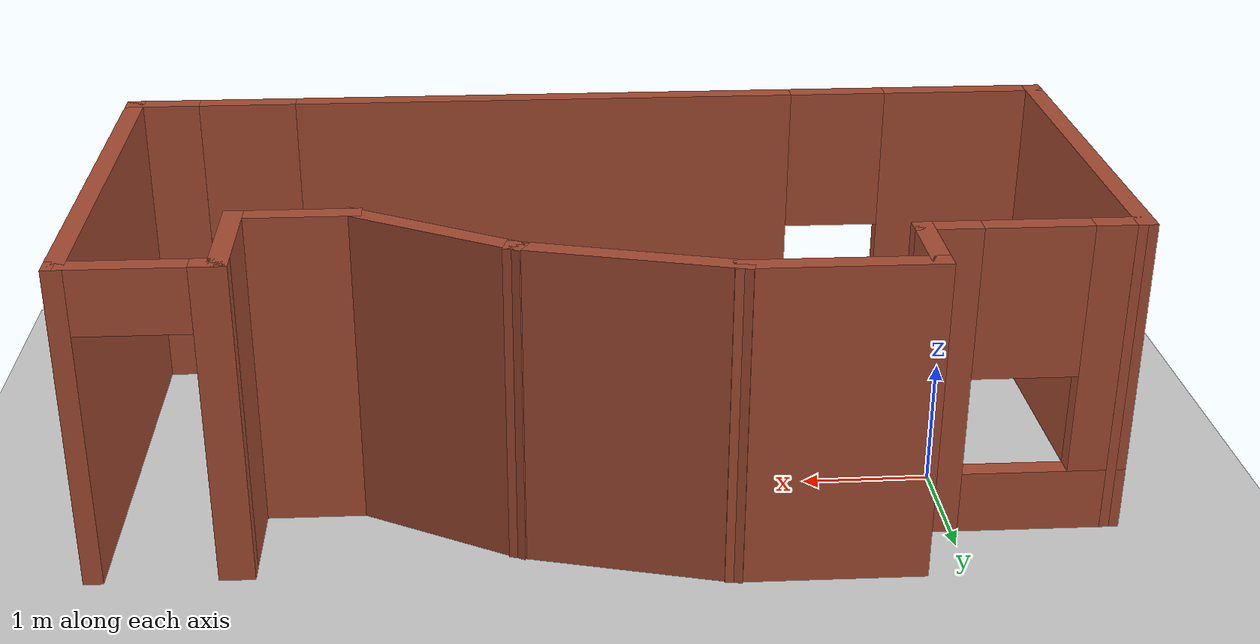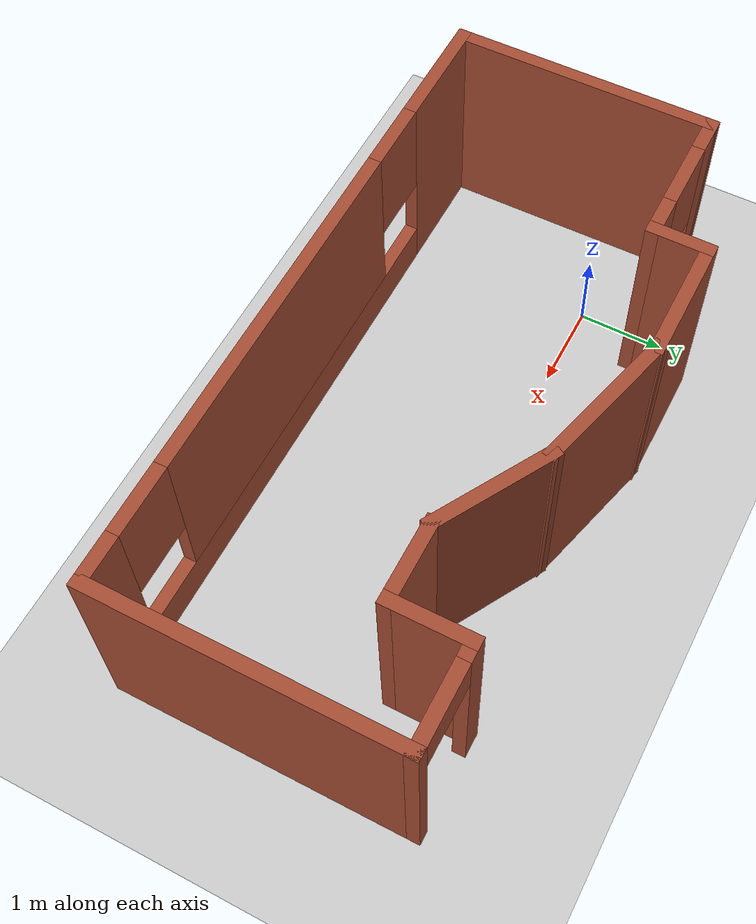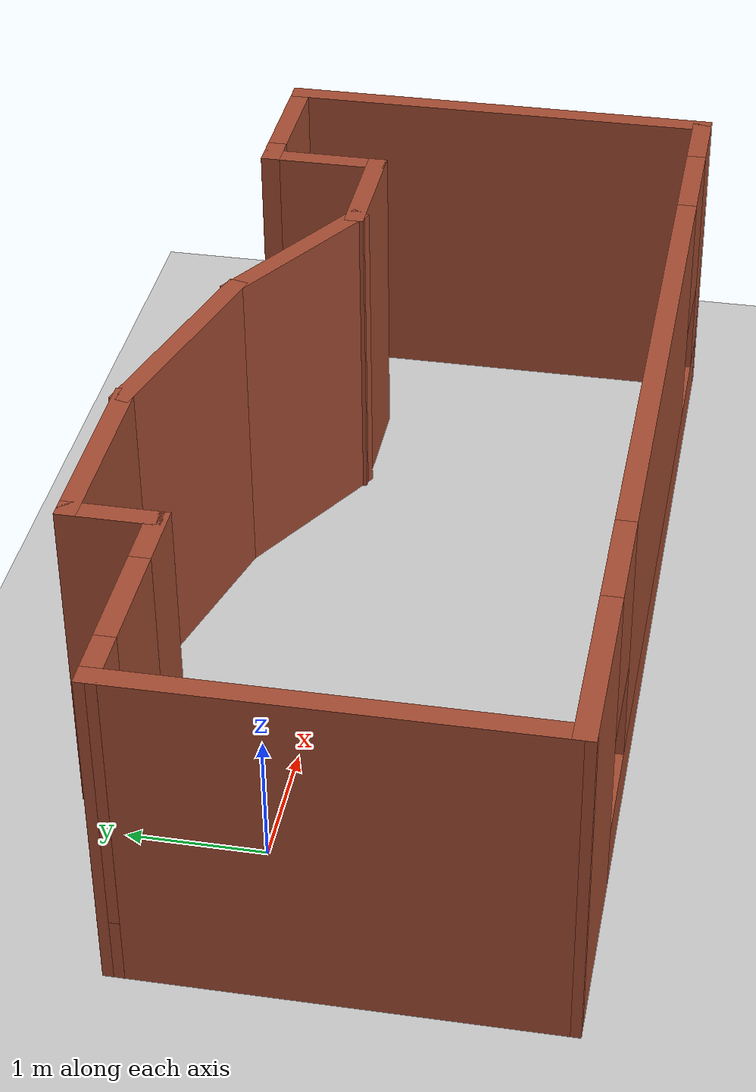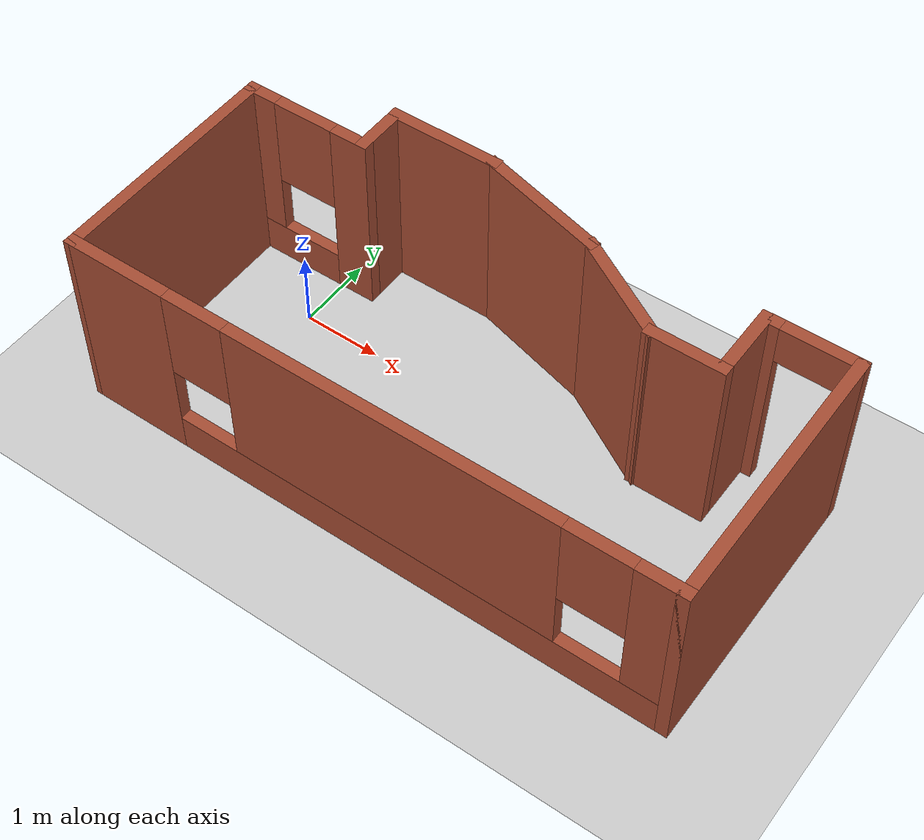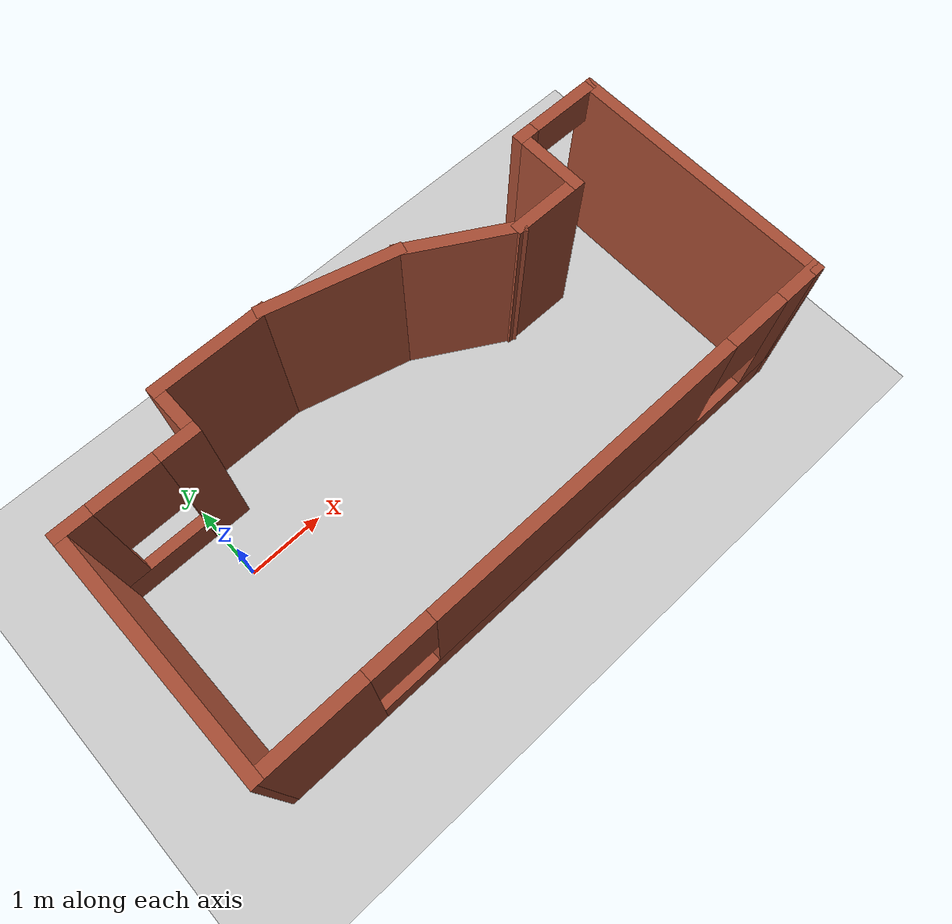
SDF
<sdf version="1.7">
 <world name="default">
  <light name="sun" type="directional">
   <pose>0 0 10 0 -0 0</pose>
   <diffuse>0.8 0.8 0.8 1</diffuse>
   <specular>0.2 0.2 0.2 1</specular>
   <attenuation>
    <range>1000</range>
    <constant>0.9</constant>
    <linear>0.01</linear>
    <quadratic>0.001</quadratic>
   </attenuation>
   <direction>-0.5 0.1 -0.9</direction>
   <spot><inner_angle>0</inner_angle><outer_angle>0</outer_angle><falloff>0</falloff></spot>
  </light>
  <model name="ground_plane">
   <static>1</static>
   <link name="link">
    <collision name="collision">
     <geometry><plane><normal>0 0 1</normal><size>100 100</size></plane></geometry>
     <surface><friction><ode><mu>100</mu><mu2>50</mu2></ode></friction></surface>
    </collision>
    <visual name="visual">
     <cast_shadows>0</cast_shadows>
     <geometry><plane><normal>0 0 1</normal><size>100 100</size></plane></geometry>
     <material>
      <script><uri>file://media/materials/scripts/gazebo.material</uri><name>Gazebo/Grey</name></script>
     </material>
    </visual>
   </link>
  </model>
  <gravity>0 0 -9.8</gravity>
  <magnetic_field>6e-06 2.3e-05 -4.2e-05</magnetic_field>
  <atmosphere type="adiabatic"/>
  <physics type="ode">
   <max_step_size>0.001</max_step_size>
   <real_time_factor>1</real_time_factor>
   <real_time_update_rate>1000</real_time_update_rate>
  </physics>
  <scene><ambient>0.4 0.4 0.4 1</ambient><background>0.7 0.7 0.7 1</background><shadows>1</shadows></scene>
  <audio><device>default</device></audio>
  <spherical_coordinates>
   <surface_model>EARTH_WGS84</surface_model>
   <latitude_deg>0</latitude_deg>
   <longitude_deg>0</longitude_deg>
   <elevation>0</elevation>
   <heading_deg>0</heading_deg>
  </spherical_coordinates>
  <model name="simple">
   <pose>2.58251 -0.4572 0 0 -0 0</pose>
   <link name="Wall_0">
    <pose>0.007491 -1.8028 0 0 -0 0</pose>
    <visual name="Wall_0_Visual_0">
     <pose>-3.1916 0 1.25 0 -0 0</pose>
     <geometry><box><size>1.36679 0.15 2.5</size></box></geometry>
     <material>
      <script><uri>file://media/materials/scripts/gazebo.material</uri><name>Gazebo/Bricks</name></script>
      <ambient>1 1 1 1</ambient>
     </material>
     <meta><layer>0</layer></meta>
    </visual>
    <collision name="Wall_0_Collision_0">
     <geometry><box><size>1.36679 0.15 2.5</size></box></geometry>
     <pose>-3.1916 0 1.25 0 -0 0</pose>
    </collision>
    <visual name="Wall_0_Visual_1">
     <pose>0.683397 0 0.25 0 -0 0</pose>
     <geometry><box><size>6.38321 0.15 0.5</size></box></geometry>
     <material>
      <script><uri>file://media/materials/scripts/gazebo.material</uri><name>Gazebo/Bricks</name></script>
      <ambient>1 1 1 1</ambient>
     </material>
     <meta><layer>0</layer></meta>
    </visual>
    <collision name="Wall_0_Collision_1">
     <geometry><box><size>6.38321 0.15 0.5</size></box></geometry>
     <pose>0.683397 0 0.25 0 -0 0</pose>
    </collision>
    <visual name="Wall_0_Visual_2">
     <pose>0.378913 0 1.5 0 -0 0</pose>
     <geometry><box><size>4.17424 0.15 2</size></box></geometry>
     <material>
      <script><uri>file://media/materials/scripts/gazebo.material</uri><name>Gazebo/Bricks</name></script>
      <ambient>1 1 1 1</ambient>
     </material>
     <meta><layer>0</layer></meta>
    </visual>
    <collision name="Wall_0_Collision_2">
     <geometry><box><size>4.17424 0.15 2</size></box></geometry>
     <pose>0.378913 0 1.5 0 -0 0</pose>
    </collision>
    <visual name="Wall_0_Visual_3">
     <pose>3.57052 0 1.5 0 -0 0</pose>
     <geometry><box><size>0.608968 0.15 2</size></box></geometry>
     <material>
      <script><uri>file://media/materials/scripts/gazebo.material</uri><name>Gazebo/Bricks</name></script>
      <ambient>1 1 1 1</ambient>
     </material>
     <meta><layer>0</layer></meta>
    </visual>
    <collision name="Wall_0_Collision_3">
     <geometry><box><size>0.608968 0.15 2</size></box></geometry>
     <pose>3.57052 0 1.5 0 -0 0</pose>
    </collision>
    <visual name="Wall_0_Visual_4">
     <pose>-2.1082 0 1.9 0 -0 0</pose>
     <geometry><box><size>0.8 0.15 1.2</size></box></geometry>
     <material>
      <script><uri>file://media/materials/scripts/gazebo.material</uri><name>Gazebo/Bricks</name></script>
      <ambient>1 1 1 1</ambient>
     </material>
     <meta><layer>0</layer></meta>
    </visual>
    <collision name="Wall_0_Collision_4">
     <geometry><box><size>0.8 0.15 1.2</size></box></geometry>
     <pose>-2.1082 0 1.9 0 -0 0</pose>
    </collision>
    <visual name="Wall_0_Visual_5">
     <pose>2.86603 0 1.9 0 -0 0</pose>
     <geometry><box><size>0.8 0.15 1.2</size></box></geometry>
     <material>
      <script><uri>file://media/materials/scripts/gazebo.material</uri><name>Gazebo/Bricks</name></script>
      <ambient>1 1 1 1</ambient>
     </material>
     <meta><layer>0</layer></meta>
    </visual>
    <collision name="Wall_0_Collision_5">
     <geometry><box><size>0.8 0.15 1.2</size></box></geometry>
     <pose>2.86603 0 1.9 0 -0 0</pose>
    </collision>
   </link>
   <link name="Wall_1">
    <collision name="Wall_1_Collision">
     <geometry><box><size>3.5 0.15 2.5</size></box></geometry>
     <pose>0 0 1.25 0 -0 0</pose>
    </collision>
    <visual name="Wall_1_Visual">
     <pose>0 0 1.25 0 -0 0</pose>
     <geometry><box><size>3.5 0.15 2.5</size></box></geometry>
     <material>
      <script><uri>file://media/materials/scripts/gazebo.material</uri><name>Gazebo/Bricks</name></script>
      <ambient>1 1 1 1</ambient>
     </material>
     <meta><layer>0</layer></meta>
    </visual>
    <pose>3.80749 -0.1278 0 0 -0 1.5708</pose>
   </link>
   <link name="Wall_11">
    <collision name="Wall_11_Collision">
     <geometry><box><size>3.13915 0.15 2.5</size></box></geometry>
     <pose>0 0 1.25 0 -0 0</pose>
    </collision>
    <visual name="Wall_11_Visual">
     <pose>0 0 1.25 0 -0 0</pose>
     <geometry><box><size>3.13915 0.15 2.5</size></box></geometry>
     <material>
      <script><uri>file://media/materials/scripts/gazebo.material</uri><name>Gazebo/Bricks</name></script>
      <ambient>1 1 1 1</ambient>
     </material>
     <meta><layer>0</layer></meta>
    </visual>
    <pose>-3.79982 -0.308245 0 0 -0 -1.56591</pose>
   </link>
   <link name="Wall_2">
    <pose>3.25749 1.5472 0 0 -0 3.14159</pose>
    <visual name="Wall_2_Visual_0">
     <pose>-0.584918 0 1.25 0 -0 0</pose>
     <geometry><box><size>0.080165 0.15 2.5</size></box></geometry>
     <material>
      <script><uri>file://media/materials/scripts/gazebo.material</uri><name>Gazebo/Bricks</name></script>
      <ambient>1 1 1 1</ambient>
     </material>
     <meta><layer>0</layer></meta>
    </visual>
    <collision name="Wall_2_Collision_0">
     <geometry><box><size>0.080165 0.15 2.5</size></box></geometry>
     <pose>-0.584918 0 1.25 0 -0 0</pose>
    </collision>
    <visual name="Wall_2_Visual_1">
     <pose>0.490082 0 1.25 0 -0 0</pose>
     <geometry><box><size>0.269835 0.15 2.5</size></box></geometry>
     <material>
      <script><uri>file://media/materials/scripts/gazebo.material</uri><name>Gazebo/Bricks</name></script>
      <ambient>1 1 1 1</ambient>
     </material>
     <meta><layer>0</layer></meta>
    </visual>
    <collision name="Wall_2_Collision_1">
     <geometry><box><size>0.269835 0.15 2.5</size></box></geometry>
     <pose>0.490082 0 1.25 0 -0 0</pose>
    </collision>
    <visual name="Wall_2_Visual_2">
     <pose>-0.094835 0 2.25 0 -0 0</pose>
     <geometry><box><size>0.9 0.15 0.5</size></box></geometry>
     <material>
      <script><uri>file://media/materials/scripts/gazebo.material</uri><name>Gazebo/Bricks</name></script>
      <ambient>1 1 1 1</ambient>
     </material>
     <meta><layer>0</layer></meta>
    </visual>
    <collision name="Wall_2_Collision_2">
     <geometry><box><size>0.9 0.15 0.5</size></box></geometry>
     <pose>-0.094835 0 2.25 0 -0 0</pose>
    </collision>
   </link>
   <link name="Wall_3">
    <collision name="Wall_3_Collision">
     <geometry><box><size>1 0.15 2.5</size></box></geometry>
     <pose>0 0 1.25 0 -0 0</pose>
    </collision>
    <visual name="Wall_3_Visual">
     <pose>0 0 1.25 0 -0 0</pose>
     <geometry><box><size>1 0.15 2.5</size></box></geometry>
     <material>
      <script><uri>file://media/materials/scripts/gazebo.material</uri><name>Gazebo/Bricks</name></script>
      <ambient>1 1 1 1</ambient>
     </material>
     <meta><layer>0</layer></meta>
    </visual>
    <pose>2.70749 1.1222 0 0 -0 -1.5708</pose>
   </link>
   <link name="Wall_4">
    <collision name="Wall_4_Collision">
     <geometry><box><size>1 0.15 2.5</size></box></geometry>
     <pose>0 0 1.25 0 -0 0</pose>
    </collision>
    <visual name="Wall_4_Visual">
     <pose>0 0 1.25 0 -0 0</pose>
     <geometry><box><size>1 0.15 2.5</size></box></geometry>
     <material>
      <script><uri>file://media/materials/scripts/gazebo.material</uri><name>Gazebo/Bricks</name></script>
      <ambient>1 1 1 1</ambient>
     </material>
     <meta><layer>0</layer></meta>
    </visual>
    <pose>2.28249 0.6972 0 0 -0 3.14159</pose>
   </link>
   <link name="Wall_5">
    <collision name="Wall_5_Collision">
     <geometry><box><size>1.5 0.15 2.5</size></box></geometry>
     <pose>0 0 1.25 0 -0 0</pose>
    </collision>
    <visual name="Wall_5_Visual">
     <pose>0 0 1.25 0 -0 0</pose>
     <geometry><box><size>1.5 0.15 2.5</size></box></geometry>
     <material>
      <script><uri>file://media/materials/scripts/gazebo.material</uri><name>Gazebo/Bricks</name></script>
      <ambient>1 1 1 1</ambient>
     </material>
     <meta><layer>0</layer></meta>
    </visual>
    <pose>1.27292 1.0347 0 0 -0 2.61799</pose>
   </link>
   <link name="Wall_6">
    <collision name="Wall_6_Collision">
     <geometry><box><size>1.75 0.15 2.5</size></box></geometry>
     <pose>0 0 1.25 0 -0 0</pose>
    </collision>
    <visual name="Wall_6_Visual">
     <pose>0 0 1.25 0 -0 0</pose>
     <geometry><box><size>1.75 0.15 2.5</size></box></geometry>
     <material>
      <script><uri>file://media/materials/scripts/gazebo.material</uri><name>Gazebo/Bricks</name></script>
      <ambient>1 1 1 1</ambient>
     </material>
     <meta><layer>0</layer></meta>
    </visual>
    <pose>-0.084384 1.57926 0 0 -0 2.87979</pose>
   </link>
   <link name="Wall_7">
    <collision name="Wall_7_Collision">
     <geometry><box><size>1.5 0.15 2.5</size></box></geometry>
     <pose>0 0 1.25 0 -0 0</pose>
    </collision>
    <visual name="Wall_7_Visual">
     <pose>0 0 1.25 0 -0 0</pose>
     <geometry><box><size>1.5 0.15 2.5</size></box></geometry>
     <material>
      <script><uri>file://media/materials/scripts/gazebo.material</uri><name>Gazebo/Bricks</name></script>
      <ambient>1 1 1 1</ambient>
     </material>
     <meta><layer>0</layer></meta>
    </visual>
    <pose>-1.53212 1.78631 0 0 -0 3.14159</pose>
   </link>
   <link name="Wall_8">
    <collision name="Wall_8_Collision">
     <geometry><box><size>0.75 0.15 2.5</size></box></geometry>
     <pose>0 0 1.25 0 -0 0</pose>
    </collision>
    <visual name="Wall_8_Visual">
     <pose>0 0 1.25 0 -0 0</pose>
     <geometry><box><size>0.75 0.15 2.5</size></box></geometry>
     <material>
      <script><uri>file://media/materials/scripts/gazebo.material</uri><name>Gazebo/Bricks</name></script>
      <ambient>1 1 1 1</ambient>
     </material>
     <meta><layer>0</layer></meta>
    </visual>
    <pose>-2.20713 1.48631 0 0 -0 -1.5708</pose>
   </link>
   <link name="Wall_9">
    <pose>-3.00712 1.18631 0 0 -0 3.14159</pose>
    <visual name="Wall_9_Visual_0">
     <pose>-0.625202 0 1.25 0 -0 0</pose>
     <geometry><box><size>0.499597 0.15 2.5</size></box></geometry>
     <material>
      <script><uri>file://media/materials/scripts/gazebo.material</uri><name>Gazebo/Bricks</name></script>
      <ambient>1 1 1 1</ambient>
     </material>
     <meta><layer>0</layer></meta>
    </visual>
    <collision name="Wall_9_Collision_0">
     <geometry><box><size>0.499597 0.15 2.5</size></box></geometry>
     <pose>-0.625202 0 1.25 0 -0 0</pose>
    </collision>
    <visual name="Wall_9_Visual_1">
     <pose>0.249798 0 0.25 0 -0 0</pose>
     <geometry><box><size>1.2504 0.15 0.5</size></box></geometry>
     <material>
      <script><uri>file://media/materials/scripts/gazebo.material</uri><name>Gazebo/Bricks</name></script>
      <ambient>1 1 1 1</ambient>
     </material>
     <meta><layer>0</layer></meta>
    </visual>
    <collision name="Wall_9_Collision_1">
     <geometry><box><size>1.2504 0.15 0.5</size></box></geometry>
     <pose>0.249798 0 0.25 0 -0 0</pose>
    </collision>
    <visual name="Wall_9_Visual_2">
     <pose>0.649798 0 1.5 0 -0 0</pose>
     <geometry><box><size>0.450403 0.15 2</size></box></geometry>
     <material>
      <script><uri>file://media/materials/scripts/gazebo.material</uri><name>Gazebo/Bricks</name></script>
      <ambient>1 1 1 1</ambient>
     </material>
     <meta><layer>0</layer></meta>
    </visual>
    <collision name="Wall_9_Collision_2">
     <geometry><box><size>0.450403 0.15 2</size></box></geometry>
     <pose>0.649798 0 1.5 0 -0 0</pose>
    </collision>
    <visual name="Wall_9_Visual_3">
     <pose>0.024597 0 1.9 0 -0 0</pose>
     <geometry><box><size>0.8 0.15 1.2</size></box></geometry>
     <material>
      <script><uri>file://media/materials/scripts/gazebo.material</uri><name>Gazebo/Bricks</name></script>
      <ambient>1 1 1 1</ambient>
     </material>
     <meta><layer>0</layer></meta>
    </visual>
    <collision name="Wall_9_Collision_3">
     <geometry><box><size>0.8 0.15 1.2</size></box></geometry>
     <pose>0.024597 0 1.9 0 -0 0</pose>
    </collision>
   </link>
   <static>1</static>
  </model>
 </world>
</sdf>
